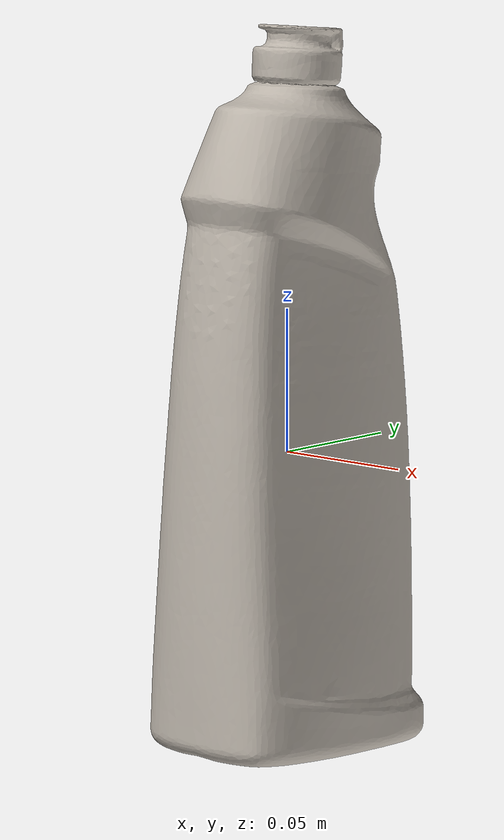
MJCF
<mujoco model="021_bleach_cleanser">
  <compiler meshdir="assets" texturedir="assets"/>

  <default>
    <default class="visual">
      <geom group="2" type="mesh" contype="0" conaffinity="0"/>
    </default>
    <default class="collision">
      <geom group="3" type="mesh" condim="6"  priority="1" solimp="0.9 0.95 0.001" mass="0" solref="0.005 1"/>
    </default>
  </default>

  <asset>
    <texture type="2d" name="texture_map" file="texture_map.png"/>
    <material name="material_0" texture="texture_map"/>
    <mesh file="021_bleach_cleanser.obj"/>
    <mesh file="021_bleach_cleanser_collision_0.obj"/>
    <mesh file="021_bleach_cleanser_collision_1.obj"/>
    <mesh file="021_bleach_cleanser_collision_2.obj"/>
  </asset>

  <worldbody>
    <body name="021_bleach_cleanser">
      <joint name="021_bleach_cleanser" type='free' damping="0.01" frictionloss="0.001"/>
      <geom name="021_bleach_cleanser" material="material_0" mesh="021_bleach_cleanser" class="visual" mass="0.603"/>
      <geom mesh="021_bleach_cleanser_collision_0" rgba="0.2697875768445831 0.7157183599505103 0.6937210083982738 1" class="collision"/>
      <geom mesh="021_bleach_cleanser_collision_1" rgba="0.4930167677348418 0.7188076252047975 0.5595617720830183 1" class="collision"/>
      <geom mesh="021_bleach_cleanser_collision_2" rgba="0.15539648731582867 0.49511481047602446 0.1646943184743862 1" class="collision"/>
      <site name="barcode" group="4" rgba="1 0 0 1" pos="-0.031735 -0.01317 -0.073959" quat="-0.5 -0.5 0.5 0.5" />
    </body>
  </worldbody>
</mujoco>
